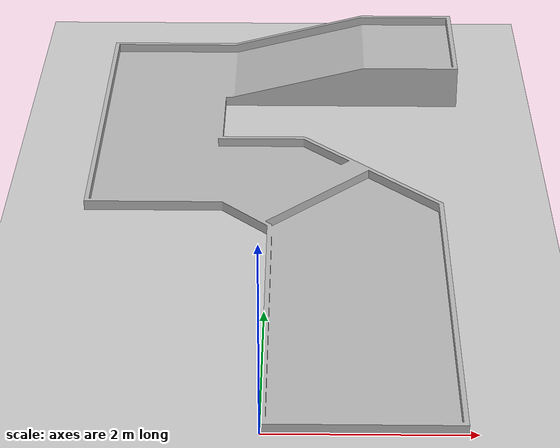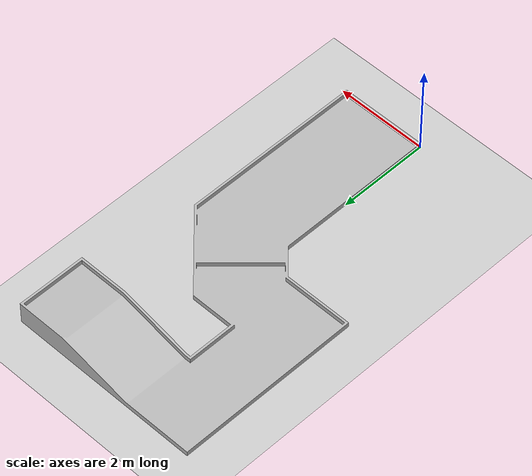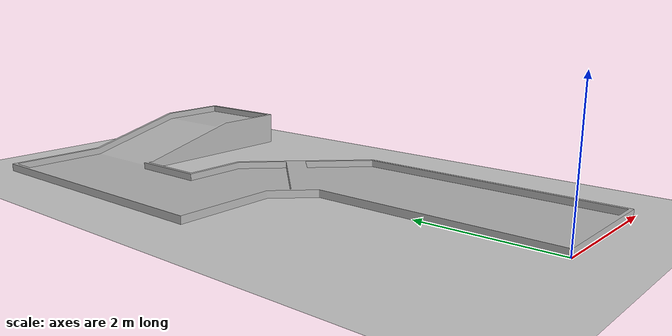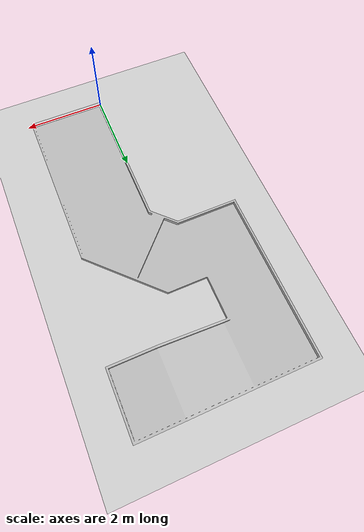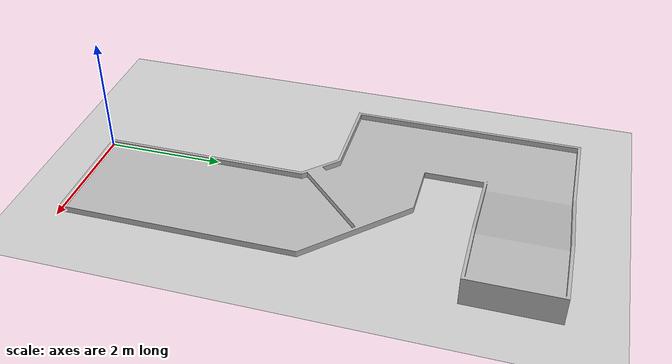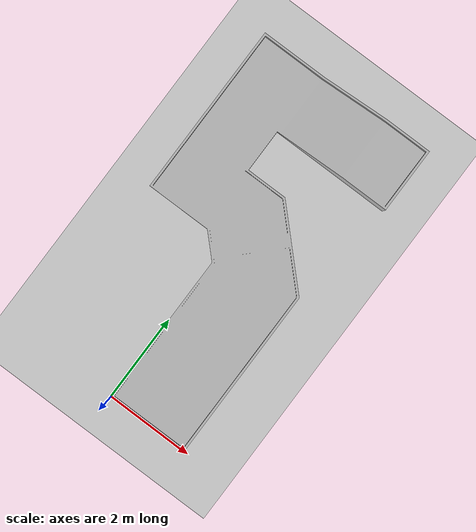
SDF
<?xml version="1.0" ?>
<sdf version="1.4">
  <world name="default">
    <include>
      <uri>model://ground_plane</uri>
    </include>
    <include>
      <uri>model://sun</uri>
    </include>
    <include>
      <uri>model://field</uri>
    </include>
  </world>
</sdf>

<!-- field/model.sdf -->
<sdf version='1.6'>
  <model name='field'>

    <link name="vennue">
      <inertial>
        <pose>0.95537 6.5455 0.14651 0 0 0</pose>
        <mass>1489.8</mass>
        <inertia>
          <ixx>4371.21945073959</ixx>
          <ixy>419.811818578591</ixy>
          <ixz>72.2915069651142</ixz>
          <iyy>1240.12512266806</iyy>
          <iyz>-120.625135665195</iyz>
          <izz>5568.05350906298</izz>
        </inertia>
      </inertial>
      <visual name="vennue_visual">
        <pose>0 0 0 1.5707963267949 0 0</pose>
        <geometry>
          <mesh>
            <uri>model://field/meshes/vennue.STL</uri>
          </mesh>
        </geometry>
      </visual>
      <collision name="vennue_collision">
        <pose>0 0 0 1.5707963267949 0 0</pose>
        <geometry>
          <mesh>
            <uri>model://field/meshes/vennue.STL</uri>
          </mesh>
        </geometry>
        <surface>
          <friction>
            <ode>
                <mu>0.5</mu>
                <mu2>0.5</mu2>
            </ode>
          </friction>
        </surface>
      </collision>
    </link>

  </model>
</sdf>
